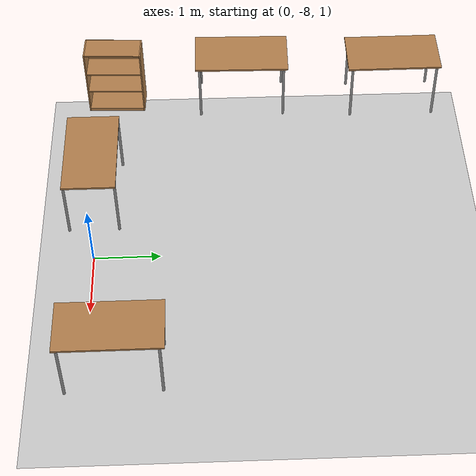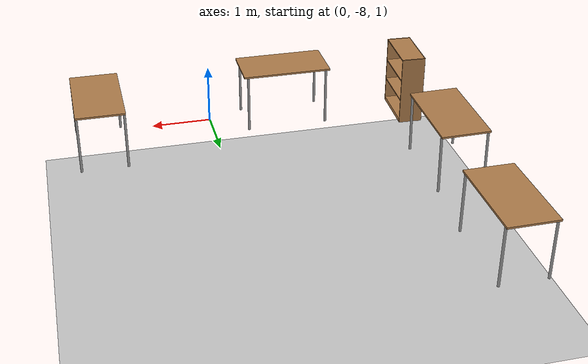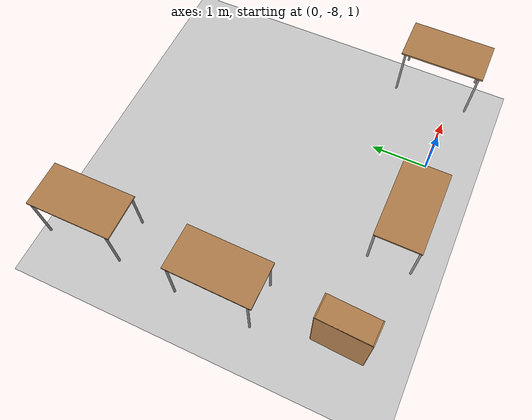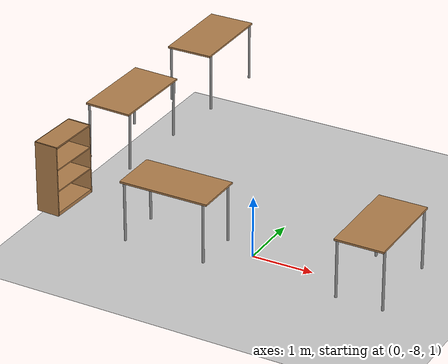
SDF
<sdf version="1.7">
 <world name="default">
  <model name="ground_plane">
   <static>1</static>
   <link name="link">
    <collision name="collision">
     <geometry><plane><normal>0 0 1</normal><size>100 100</size></plane></geometry>
     <surface>
      <contact><collide_bitmask>65535</collide_bitmask></contact>
      <friction><ode><mu>100</mu><mu2>50</mu2></ode></friction>
     </surface>
    </collision>
    <visual name="visual">
     <cast_shadows>0</cast_shadows>
     <geometry><plane><normal>0 0 1</normal><size>100 100</size></plane></geometry>
     <material>
      <script><uri>file://media/materials/scripts/gazebo.material</uri><name>Gazebo/Grey</name></script>
     </material>
    </visual>
   </link>
  </model>
  <model name="table">
   <static>1</static>
   <link name="link">
    <collision name="surface">
     <pose>0 0 1 0 -0 0</pose>
     <geometry><box><size>1.5 0.8 0.03</size></box></geometry>
     <surface><friction><ode><mu>0.6</mu><mu2>0.6</mu2></ode></friction></surface>
    </collision>
    <visual name="visual1">
     <pose>0 0 1 0 -0 0</pose>
     <geometry><box><size>1.5 0.8 0.03</size></box></geometry>
     <material>
      <script><uri>file://media/materials/scripts/gazebo.material</uri><name>Gazebo/Wood</name></script>
     </material>
    </visual>
    <collision name="front_left_leg">
     <pose>0.68 0.38 0.5 0 -0 0</pose>
     <geometry><cylinder><radius>0.02</radius><length>1</length></cylinder></geometry>
    </collision>
    <visual name="front_left_leg">
     <pose>0.68 0.38 0.5 0 -0 0</pose>
     <geometry><cylinder><radius>0.02</radius><length>1</length></cylinder></geometry>
     <material>
      <script><uri>file://media/materials/scripts/gazebo.material</uri><name>Gazebo/Grey</name></script>
     </material>
    </visual>
    <collision name="front_right_leg">
     <pose>0.68 -0.38 0.5 0 -0 0</pose>
     <geometry><cylinder><radius>0.02</radius><length>1</length></cylinder></geometry>
    </collision>
    <visual name="front_right_leg">
     <pose>0.68 -0.38 0.5 0 -0 0</pose>
     <geometry><cylinder><radius>0.02</radius><length>1</length></cylinder></geometry>
     <material>
      <script><uri>file://media/materials/scripts/gazebo.material</uri><name>Gazebo/Grey</name></script>
     </material>
    </visual>
    <collision name="back_right_leg">
     <pose>-0.68 -0.38 0.5 0 -0 0</pose>
     <geometry><cylinder><radius>0.02</radius><length>1</length></cylinder></geometry>
    </collision>
    <visual name="back_right_leg">
     <pose>-0.68 -0.38 0.5 0 -0 0</pose>
     <geometry><cylinder><radius>0.02</radius><length>1</length></cylinder></geometry>
     <material>
      <script><uri>file://media/materials/scripts/gazebo.material</uri><name>Gazebo/Grey</name></script>
     </material>
    </visual>
    <collision name="back_left_leg">
     <pose>-0.68 0.38 0.5 0 -0 0</pose>
     <geometry><cylinder><radius>0.02</radius><length>1</length></cylinder></geometry>
    </collision>
    <visual name="back_left_leg">
     <pose>-0.68 0.38 0.5 0 -0 0</pose>
     <geometry><cylinder><radius>0.02</radius><length>1</length></cylinder></geometry>
     <material>
      <script><uri>file://media/materials/scripts/gazebo.material</uri><name>Gazebo/Grey</name></script>
     </material>
    </visual>
   </link>
   <pose>-1.31045 -8.0275 0.922176 0 -0 0</pose>
  </model>
  <model name="table_3">
   <static>1</static>
   <link name="link">
    <collision name="surface">
     <pose>0 0 1 0 -0 0</pose>
     <geometry><box><size>1.5 0.8 0.03</size></box></geometry>
     <surface><friction><ode><mu>0.6</mu><mu2>0.6</mu2></ode></friction></surface>
    </collision>
    <visual name="visual1">
     <pose>0 0 1 0 -0 0</pose>
     <geometry><box><size>1.5 0.8 0.03</size></box></geometry>
     <material>
      <script><uri>file://media/materials/scripts/gazebo.material</uri><name>Gazebo/Wood</name></script>
     </material>
    </visual>
    <collision name="front_left_leg">
     <pose>0.68 0.38 0.5 0 -0 0</pose>
     <geometry><cylinder><radius>0.02</radius><length>1</length></cylinder></geometry>
    </collision>
    <visual name="front_left_leg">
     <pose>0.68 0.38 0.5 0 -0 0</pose>
     <geometry><cylinder><radius>0.02</radius><length>1</length></cylinder></geometry>
     <material>
      <script><uri>file://media/materials/scripts/gazebo.material</uri><name>Gazebo/Grey</name></script>
     </material>
    </visual>
    <collision name="front_right_leg">
     <pose>0.68 -0.38 0.5 0 -0 0</pose>
     <geometry><cylinder><radius>0.02</radius><length>1</length></cylinder></geometry>
    </collision>
    <visual name="front_right_leg">
     <pose>0.68 -0.38 0.5 0 -0 0</pose>
     <geometry><cylinder><radius>0.02</radius><length>1</length></cylinder></geometry>
     <material>
      <script><uri>file://media/materials/scripts/gazebo.material</uri><name>Gazebo/Grey</name></script>
     </material>
    </visual>
    <collision name="back_right_leg">
     <pose>-0.68 -0.38 0.5 0 -0 0</pose>
     <geometry><cylinder><radius>0.02</radius><length>1</length></cylinder></geometry>
    </collision>
    <visual name="back_right_leg">
     <pose>-0.68 -0.38 0.5 0 -0 0</pose>
     <geometry><cylinder><radius>0.02</radius><length>1</length></cylinder></geometry>
     <material>
      <script><uri>file://media/materials/scripts/gazebo.material</uri><name>Gazebo/Grey</name></script>
     </material>
    </visual>
    <collision name="back_left_leg">
     <pose>-0.68 0.38 0.5 0 -0 0</pose>
     <geometry><cylinder><radius>0.02</radius><length>1</length></cylinder></geometry>
    </collision>
    <visual name="back_left_leg">
     <pose>-0.68 0.38 0.5 0 -0 0</pose>
     <geometry><cylinder><radius>0.02</radius><length>1</length></cylinder></geometry>
     <material>
      <script><uri>file://media/materials/scripts/gazebo.material</uri><name>Gazebo/Grey</name></script>
     </material>
    </visual>
   </link>
   <pose>-3.41167 -3.23121 0.91337 0 -0 1.57742</pose>
  </model>
  <model name="table_4">
   <static>1</static>
   <link name="link">
    <collision name="surface">
     <pose>0 0 1 0 -0 0</pose>
     <geometry><box><size>1.5 0.8 0.03</size></box></geometry>
     <surface><friction><ode><mu>0.6</mu><mu2>0.6</mu2></ode></friction></surface>
    </collision>
    <visual name="visual1">
     <pose>0 0 1 0 -0 0</pose>
     <geometry><box><size>1.5 0.8 0.03</size></box></geometry>
     <material>
      <script><uri>file://media/materials/scripts/gazebo.material</uri><name>Gazebo/Wood</name></script>
     </material>
    </visual>
    <collision name="front_left_leg">
     <pose>0.68 0.38 0.5 0 -0 0</pose>
     <geometry><cylinder><radius>0.02</radius><length>1</length></cylinder></geometry>
    </collision>
    <visual name="front_left_leg">
     <pose>0.68 0.38 0.5 0 -0 0</pose>
     <geometry><cylinder><radius>0.02</radius><length>1</length></cylinder></geometry>
     <material>
      <script><uri>file://media/materials/scripts/gazebo.material</uri><name>Gazebo/Grey</name></script>
     </material>
    </visual>
    <collision name="front_right_leg">
     <pose>0.68 -0.38 0.5 0 -0 0</pose>
     <geometry><cylinder><radius>0.02</radius><length>1</length></cylinder></geometry>
    </collision>
    <visual name="front_right_leg">
     <pose>0.68 -0.38 0.5 0 -0 0</pose>
     <geometry><cylinder><radius>0.02</radius><length>1</length></cylinder></geometry>
     <material>
      <script><uri>file://media/materials/scripts/gazebo.material</uri><name>Gazebo/Grey</name></script>
     </material>
    </visual>
    <collision name="back_right_leg">
     <pose>-0.68 -0.38 0.5 0 -0 0</pose>
     <geometry><cylinder><radius>0.02</radius><length>1</length></cylinder></geometry>
    </collision>
    <visual name="back_right_leg">
     <pose>-0.68 -0.38 0.5 0 -0 0</pose>
     <geometry><cylinder><radius>0.02</radius><length>1</length></cylinder></geometry>
     <material>
      <script><uri>file://media/materials/scripts/gazebo.material</uri><name>Gazebo/Grey</name></script>
     </material>
    </visual>
    <collision name="back_left_leg">
     <pose>-0.68 0.38 0.5 0 -0 0</pose>
     <geometry><cylinder><radius>0.02</radius><length>1</length></cylinder></geometry>
    </collision>
    <visual name="back_left_leg">
     <pose>-0.68 0.38 0.5 0 -0 0</pose>
     <geometry><cylinder><radius>0.02</radius><length>1</length></cylinder></geometry>
     <material>
      <script><uri>file://media/materials/scripts/gazebo.material</uri><name>Gazebo/Grey</name></script>
     </material>
    </visual>
   </link>
   <pose>-3.50182 -5.69956 0.91147 0.018351 0.00252 1.55812</pose>
  </model>
  <model name="table_6">
   <static>1</static>
   <link name="link">
    <collision name="surface">
     <pose>0 0 1 0 -0 0</pose>
     <geometry><box><size>1.5 0.8 0.03</size></box></geometry>
     <surface><friction><ode><mu>0.6</mu><mu2>0.6</mu2></ode></friction></surface>
    </collision>
    <visual name="visual1">
     <pose>0 0 1 0 -0 0</pose>
     <geometry><box><size>1.5 0.8 0.03</size></box></geometry>
     <material>
      <script><uri>file://media/materials/scripts/gazebo.material</uri><name>Gazebo/Wood</name></script>
     </material>
    </visual>
    <collision name="front_left_leg">
     <pose>0.68 0.38 0.5 0 -0 0</pose>
     <geometry><cylinder><radius>0.02</radius><length>1</length></cylinder></geometry>
    </collision>
    <visual name="front_left_leg">
     <pose>0.68 0.38 0.5 0 -0 0</pose>
     <geometry><cylinder><radius>0.02</radius><length>1</length></cylinder></geometry>
     <material>
      <script><uri>file://media/materials/scripts/gazebo.material</uri><name>Gazebo/Grey</name></script>
     </material>
    </visual>
    <collision name="front_right_leg">
     <pose>0.68 -0.38 0.5 0 -0 0</pose>
     <geometry><cylinder><radius>0.02</radius><length>1</length></cylinder></geometry>
    </collision>
    <visual name="front_right_leg">
     <pose>0.68 -0.38 0.5 0 -0 0</pose>
     <geometry><cylinder><radius>0.02</radius><length>1</length></cylinder></geometry>
     <material>
      <script><uri>file://media/materials/scripts/gazebo.material</uri><name>Gazebo/Grey</name></script>
     </material>
    </visual>
    <collision name="back_right_leg">
     <pose>-0.68 -0.38 0.5 0 -0 0</pose>
     <geometry><cylinder><radius>0.02</radius><length>1</length></cylinder></geometry>
    </collision>
    <visual name="back_right_leg">
     <pose>-0.68 -0.38 0.5 0 -0 0</pose>
     <geometry><cylinder><radius>0.02</radius><length>1</length></cylinder></geometry>
     <material>
      <script><uri>file://media/materials/scripts/gazebo.material</uri><name>Gazebo/Grey</name></script>
     </material>
    </visual>
    <collision name="back_left_leg">
     <pose>-0.68 0.38 0.5 0 -0 0</pose>
     <geometry><cylinder><radius>0.02</radius><length>1</length></cylinder></geometry>
    </collision>
    <visual name="back_left_leg">
     <pose>-0.68 0.38 0.5 0 -0 0</pose>
     <geometry><cylinder><radius>0.02</radius><length>1</length></cylinder></geometry>
     <material>
      <script><uri>file://media/materials/scripts/gazebo.material</uri><name>Gazebo/Grey</name></script>
     </material>
    </visual>
   </link>
   <pose>1.91527 -7.61519 0.897907 0 -0 1.57377</pose>
  </model>
  <model name="bookshelf">
   <static>1</static>
   <link name="link">
    <inertial><mass>1</mass></inertial>
    <collision name="back">
     <pose>0 0.005 0.6 0 -0 0</pose>
     <geometry><box><size>0.9 0.01 1.2</size></box></geometry>
    </collision>
    <visual name="visual1">
     <pose>0 0.005 0.6 0 -0 0</pose>
     <geometry><box><size>0.9 0.01 1.2</size></box></geometry>
     <material>
      <script><uri>file://media/materials/scripts/gazebo.material</uri><name>Gazebo/Wood</name></script>
     </material>
    </visual>
    <collision name="left_side">
     <pose>0.45 -0.195 0.6 0 -0 0</pose>
     <geometry><box><size>0.02 0.4 1.2</size></box></geometry>
    </collision>
    <visual name="visual2">
     <pose>0.45 -0.195 0.6 0 -0 0</pose>
     <geometry><box><size>0.02 0.4 1.2</size></box></geometry>
     <material>
      <script><uri>file://media/materials/scripts/gazebo.material</uri><name>Gazebo/Wood</name></script>
     </material>
    </visual>
    <collision name="right_side">
     <pose>-0.45 -0.195 0.6 0 -0 0</pose>
     <geometry><box><size>0.02 0.4 1.2</size></box></geometry>
    </collision>
    <visual name="visual3">
     <pose>-0.45 -0.195 0.6 0 -0 0</pose>
     <geometry><box><size>0.02 0.4 1.2</size></box></geometry>
     <material>
      <script><uri>file://media/materials/scripts/gazebo.material</uri><name>Gazebo/Wood</name></script>
     </material>
    </visual>
    <collision name="bottom">
     <pose>0 -0.195 0.03 0 -0 0</pose>
     <geometry><box><size>0.88 0.4 0.06</size></box></geometry>
    </collision>
    <visual name="visual4">
     <pose>0 -0.195 0.03 0 -0 0</pose>
     <geometry><box><size>0.88 0.4 0.06</size></box></geometry>
     <material>
      <script><uri>file://media/materials/scripts/gazebo.material</uri><name>Gazebo/Wood</name></script>
     </material>
    </visual>
    <collision name="top">
     <pose>0 -0.195 1.19 0 -0 0</pose>
     <geometry><box><size>0.88 0.4 0.02</size></box></geometry>
    </collision>
    <visual name="visual5">
     <pose>0 -0.195 1.19 0 -0 0</pose>
     <geometry><box><size>0.88 0.4 0.02</size></box></geometry>
     <material>
      <script><uri>file://media/materials/scripts/gazebo.material</uri><name>Gazebo/Wood</name></script>
     </material>
    </visual>
    <collision name="low_shelf">
     <pose>0 -0.195 0.43 0 -0 0</pose>
     <geometry><box><size>0.88 0.4 0.02</size></box></geometry>
    </collision>
    <visual name="visual6">
     <pose>0 -0.195 0.43 0 -0 0</pose>
     <geometry><box><size>0.88 0.4 0.02</size></box></geometry>
     <material>
      <script><uri>file://media/materials/scripts/gazebo.material</uri><name>Gazebo/Wood</name></script>
     </material>
    </visual>
    <collision name="high_shelf">
     <pose>0 -0.195 0.8 0 -0 0</pose>
     <geometry><box><size>0.88 0.4 0.02</size></box></geometry>
    </collision>
    <visual name="visual7">
     <pose>0 -0.195 0.8 0 -0 0</pose>
     <geometry><box><size>0.88 0.4 0.02</size></box></geometry>
     <material>
      <script><uri>file://media/materials/scripts/gazebo.material</uri><name>Gazebo/Wood</name></script>
     </material>
    </visual>
   </link>
   <pose>-3.67668 -7.7689 0.897537 0 -0 1.5299</pose>
  </model>
 </world>
</sdf>
